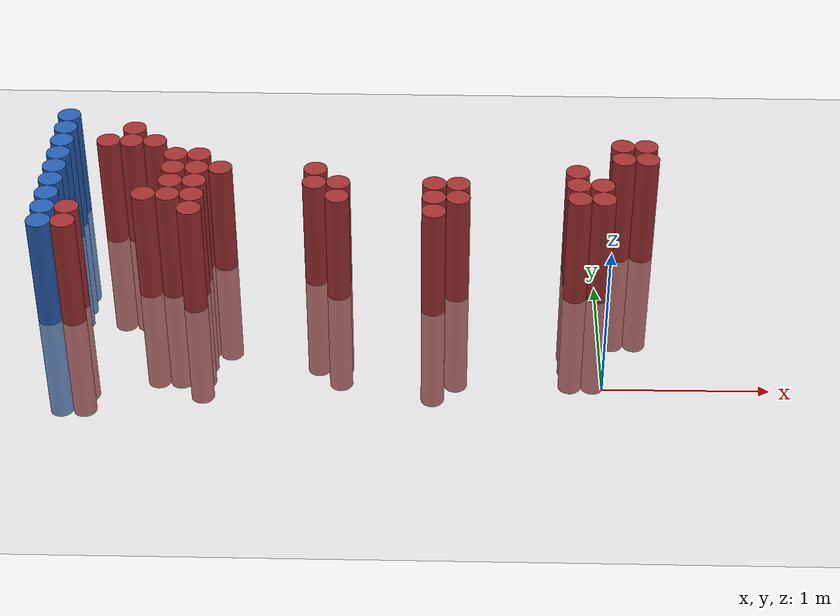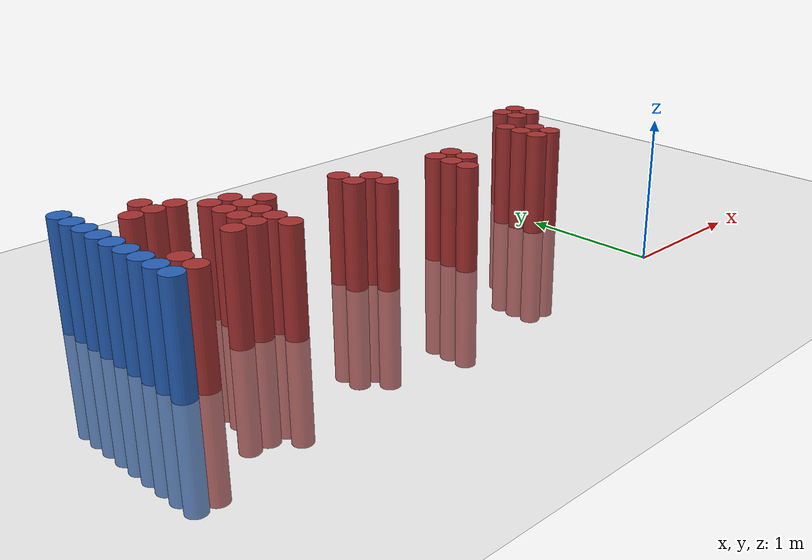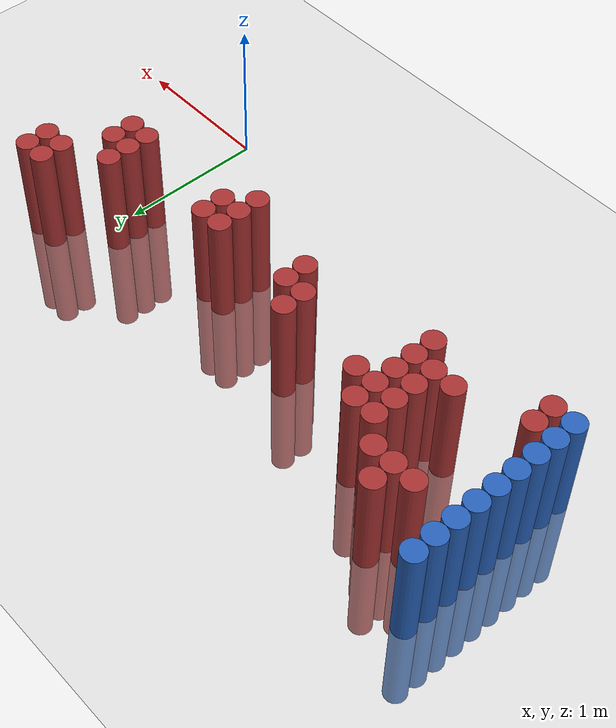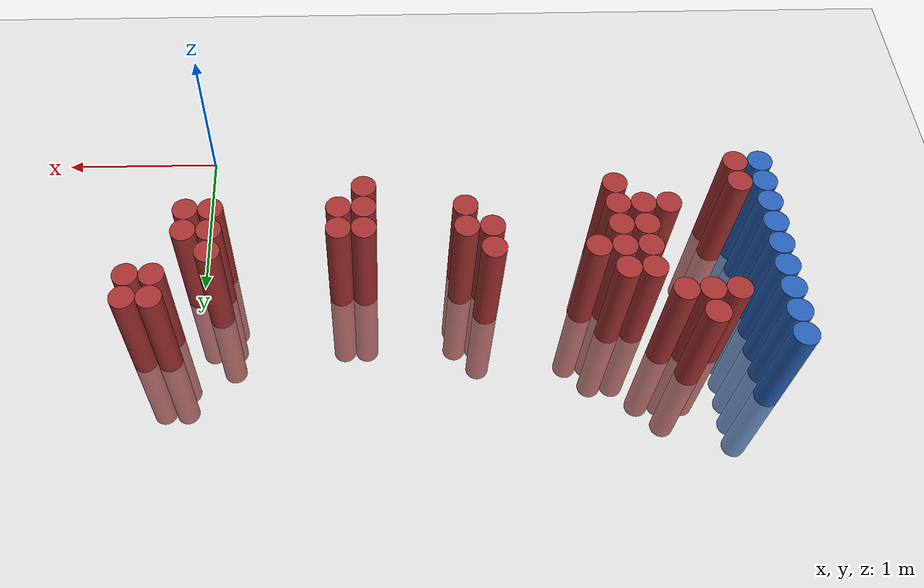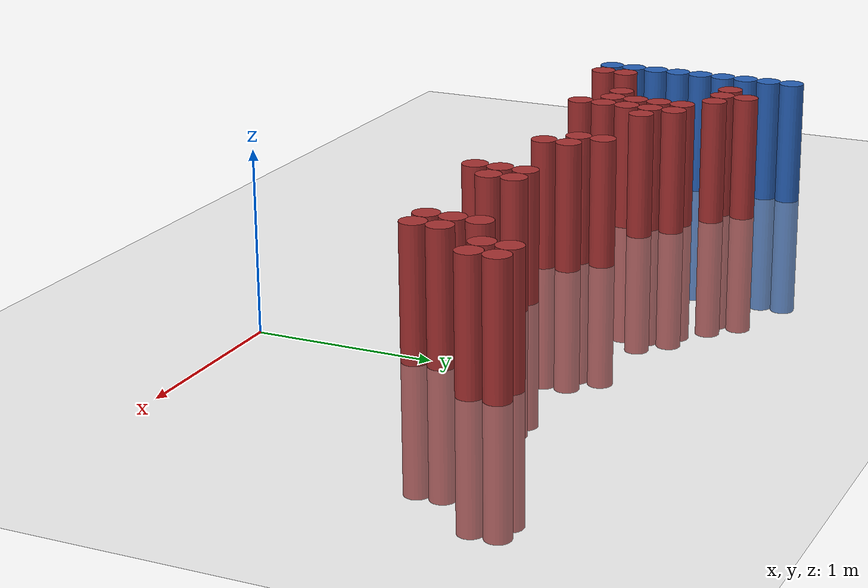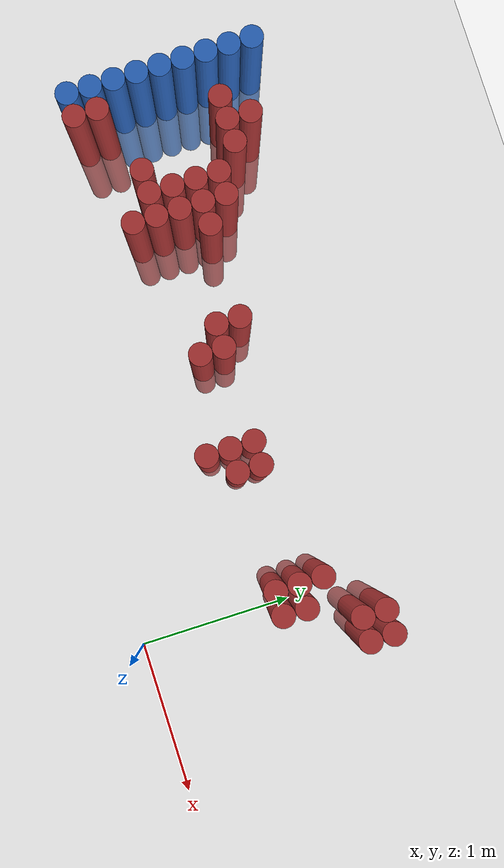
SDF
<sdf version="1.6">
 <world name="default">
  <model name="ground_plane">
   <static>1</static>
   <link name="link">
    <collision name="collision">
     <geometry><plane><normal>0 0 1</normal><size>100 100</size></plane></geometry>
     <surface><friction><ode><mu>100</mu><mu2>50</mu2></ode></friction></surface>
    </collision>
    <visual name="visual">
     <cast_shadows>0</cast_shadows>
     <geometry><plane><normal>0 0 1</normal><size>100 100</size></plane></geometry>
     <material>
      <script><uri>file://media/materials/scripts/gazebo.material</uri><name>Gazebo/Grey</name></script>
     </material>
    </visual>
   </link>
  </model>
  <model name="unit_cylinder_123">
   <static>1</static>
   <pose>-3.425000 0.625000 0.000000 0.000000 0.000000 0.000000</pose>
   <link name="link">
    <inertial>
     <mass>1</mass>
     <inertia><ixx>0.145833</ixx><ixy>0</ixy><ixz>0</ixz><iyy>0.145833</iyy><iyz>0</iyz><izz>0.125</izz></inertia>
    </inertial>
    <collision name="collision">
     <geometry><cylinder><radius>0.075000</radius><length>1.5</length></cylinder></geometry>
    </collision>
    <visual name="visual">
     <geometry><cylinder><radius>0.075000</radius><length>1.5</length></cylinder></geometry>
     <material>
      <ambient>0.152000 0.379000 0.720000 1</ambient>
      <diffuse>0.152000 0.379000 0.720000 1</diffuse>
     </material>
     <material>
      <script><name>Gazebo/Grey</name><uri>file://media/materials/scripts/gazebo.material</uri></script>
     </material>
    </visual>
   </link>
  </model>
  <model name="unit_cylinder_125">
   <static>1</static>
   <pose>-3.425000 0.775000 0.000000 0.000000 0.000000 0.000000</pose>
   <link name="link">
    <inertial>
     <mass>1</mass>
     <inertia><ixx>0.145833</ixx><ixy>0</ixy><ixz>0</ixz><iyy>0.145833</iyy><iyz>0</iyz><izz>0.125</izz></inertia>
    </inertial>
    <collision name="collision">
     <geometry><cylinder><radius>0.075000</radius><length>1.5</length></cylinder></geometry>
    </collision>
    <visual name="visual">
     <geometry><cylinder><radius>0.075000</radius><length>1.5</length></cylinder></geometry>
     <material>
      <ambient>0.152000 0.379000 0.720000 1</ambient>
      <diffuse>0.152000 0.379000 0.720000 1</diffuse>
     </material>
     <material>
      <script><name>Gazebo/Grey</name><uri>file://media/materials/scripts/gazebo.material</uri></script>
     </material>
    </visual>
   </link>
  </model>
  <model name="unit_cylinder_127">
   <static>1</static>
   <pose>-3.425000 0.925000 0.000000 0.000000 0.000000 0.000000</pose>
   <link name="link">
    <inertial>
     <mass>1</mass>
     <inertia><ixx>0.145833</ixx><ixy>0</ixy><ixz>0</ixz><iyy>0.145833</iyy><iyz>0</iyz><izz>0.125</izz></inertia>
    </inertial>
    <collision name="collision">
     <geometry><cylinder><radius>0.075000</radius><length>1.5</length></cylinder></geometry>
    </collision>
    <visual name="visual">
     <geometry><cylinder><radius>0.075000</radius><length>1.5</length></cylinder></geometry>
     <material>
      <ambient>0.152000 0.379000 0.720000 1</ambient>
      <diffuse>0.152000 0.379000 0.720000 1</diffuse>
     </material>
     <material>
      <script><name>Gazebo/Grey</name><uri>file://media/materials/scripts/gazebo.material</uri></script>
     </material>
    </visual>
   </link>
  </model>
  <model name="unit_cylinder_129">
   <static>1</static>
   <pose>-3.425000 1.075000 0.000000 0.000000 0.000000 0.000000</pose>
   <link name="link">
    <inertial>
     <mass>1</mass>
     <inertia><ixx>0.145833</ixx><ixy>0</ixy><ixz>0</ixz><iyy>0.145833</iyy><iyz>0</iyz><izz>0.125</izz></inertia>
    </inertial>
    <collision name="collision">
     <geometry><cylinder><radius>0.075000</radius><length>1.5</length></cylinder></geometry>
    </collision>
    <visual name="visual">
     <geometry><cylinder><radius>0.075000</radius><length>1.5</length></cylinder></geometry>
     <material>
      <ambient>0.152000 0.379000 0.720000 1</ambient>
      <diffuse>0.152000 0.379000 0.720000 1</diffuse>
     </material>
     <material>
      <script><name>Gazebo/Grey</name><uri>file://media/materials/scripts/gazebo.material</uri></script>
     </material>
    </visual>
   </link>
  </model>
  <model name="unit_cylinder_131">
   <static>1</static>
   <pose>-3.425000 1.225000 0.000000 0.000000 0.000000 0.000000</pose>
   <link name="link">
    <inertial>
     <mass>1</mass>
     <inertia><ixx>0.145833</ixx><ixy>0</ixy><ixz>0</ixz><iyy>0.145833</iyy><iyz>0</iyz><izz>0.125</izz></inertia>
    </inertial>
    <collision name="collision">
     <geometry><cylinder><radius>0.075000</radius><length>1.5</length></cylinder></geometry>
    </collision>
    <visual name="visual">
     <geometry><cylinder><radius>0.075000</radius><length>1.5</length></cylinder></geometry>
     <material>
      <ambient>0.152000 0.379000 0.720000 1</ambient>
      <diffuse>0.152000 0.379000 0.720000 1</diffuse>
     </material>
     <material>
      <script><name>Gazebo/Grey</name><uri>file://media/materials/scripts/gazebo.material</uri></script>
     </material>
    </visual>
   </link>
  </model>
  <model name="unit_cylinder_133">
   <static>1</static>
   <pose>-3.425000 1.375000 0.000000 0.000000 0.000000 0.000000</pose>
   <link name="link">
    <inertial>
     <mass>1</mass>
     <inertia><ixx>0.145833</ixx><ixy>0</ixy><ixz>0</ixz><iyy>0.145833</iyy><iyz>0</iyz><izz>0.125</izz></inertia>
    </inertial>
    <collision name="collision">
     <geometry><cylinder><radius>0.075000</radius><length>1.5</length></cylinder></geometry>
    </collision>
    <visual name="visual">
     <geometry><cylinder><radius>0.075000</radius><length>1.5</length></cylinder></geometry>
     <material>
      <ambient>0.152000 0.379000 0.720000 1</ambient>
      <diffuse>0.152000 0.379000 0.720000 1</diffuse>
     </material>
     <material>
      <script><name>Gazebo/Grey</name><uri>file://media/materials/scripts/gazebo.material</uri></script>
     </material>
    </visual>
   </link>
  </model>
  <model name="unit_cylinder_135">
   <static>1</static>
   <pose>-3.425000 1.525000 0.000000 0.000000 0.000000 0.000000</pose>
   <link name="link">
    <inertial>
     <mass>1</mass>
     <inertia><ixx>0.145833</ixx><ixy>0</ixy><ixz>0</ixz><iyy>0.145833</iyy><iyz>0</iyz><izz>0.125</izz></inertia>
    </inertial>
    <collision name="collision">
     <geometry><cylinder><radius>0.075000</radius><length>1.5</length></cylinder></geometry>
    </collision>
    <visual name="visual">
     <geometry><cylinder><radius>0.075000</radius><length>1.5</length></cylinder></geometry>
     <material>
      <ambient>0.152000 0.379000 0.720000 1</ambient>
      <diffuse>0.152000 0.379000 0.720000 1</diffuse>
     </material>
     <material>
      <script><name>Gazebo/Grey</name><uri>file://media/materials/scripts/gazebo.material</uri></script>
     </material>
    </visual>
   </link>
  </model>
  <model name="unit_cylinder_137">
   <static>1</static>
   <pose>-3.425000 1.675000 0.000000 0.000000 0.000000 0.000000</pose>
   <link name="link">
    <inertial>
     <mass>1</mass>
     <inertia><ixx>0.145833</ixx><ixy>0</ixy><ixz>0</ixz><iyy>0.145833</iyy><iyz>0</iyz><izz>0.125</izz></inertia>
    </inertial>
    <collision name="collision">
     <geometry><cylinder><radius>0.075000</radius><length>1.5</length></cylinder></geometry>
    </collision>
    <visual name="visual">
     <geometry><cylinder><radius>0.075000</radius><length>1.5</length></cylinder></geometry>
     <material>
      <ambient>0.152000 0.379000 0.720000 1</ambient>
      <diffuse>0.152000 0.379000 0.720000 1</diffuse>
     </material>
     <material>
      <script><name>Gazebo/Grey</name><uri>file://media/materials/scripts/gazebo.material</uri></script>
     </material>
    </visual>
   </link>
  </model>
  <model name="unit_cylinder_139">
   <static>1</static>
   <pose>-3.425000 1.825000 0.000000 0.000000 0.000000 0.000000</pose>
   <link name="link">
    <inertial>
     <mass>1</mass>
     <inertia><ixx>0.145833</ixx><ixy>0</ixy><ixz>0</ixz><iyy>0.145833</iyy><iyz>0</iyz><izz>0.125</izz></inertia>
    </inertial>
    <collision name="collision">
     <geometry><cylinder><radius>0.075000</radius><length>1.5</length></cylinder></geometry>
    </collision>
    <visual name="visual">
     <geometry><cylinder><radius>0.075000</radius><length>1.5</length></cylinder></geometry>
     <material>
      <ambient>0.152000 0.379000 0.720000 1</ambient>
      <diffuse>0.152000 0.379000 0.720000 1</diffuse>
     </material>
     <material>
      <script><name>Gazebo/Grey</name><uri>file://media/materials/scripts/gazebo.material</uri></script>
     </material>
    </visual>
   </link>
  </model>
  <model name="unit_cylinder_225">
   <static>1</static>
   <pose>-3.425000 0.625000 0.000000 0.000000 0.000000 0.000000</pose>
   <link name="link">
    <inertial>
     <mass>1</mass>
     <inertia><ixx>0.145833</ixx><ixy>0</ixy><ixz>0</ixz><iyy>0.145833</iyy><iyz>0</iyz><izz>0.125</izz></inertia>
    </inertial>
    <collision name="collision">
     <geometry><cylinder><radius>0.075000</radius><length>1.5</length></cylinder></geometry>
    </collision>
    <visual name="visual">
     <geometry><cylinder><radius>0.075000</radius><length>1.5</length></cylinder></geometry>
     <material>
      <ambient>0.152000 0.379000 0.720000 1</ambient>
      <diffuse>0.152000 0.379000 0.720000 1</diffuse>
     </material>
     <material>
      <script><name>Gazebo/Grey</name><uri>file://media/materials/scripts/gazebo.material</uri></script>
     </material>
    </visual>
   </link>
  </model>
  <model name="unit_cylinder_226">
   <static>1</static>
   <pose>-3.425000 0.775000 0.000000 0.000000 0.000000 0.000000</pose>
   <link name="link">
    <inertial>
     <mass>1</mass>
     <inertia><ixx>0.145833</ixx><ixy>0</ixy><ixz>0</ixz><iyy>0.145833</iyy><iyz>0</iyz><izz>0.125</izz></inertia>
    </inertial>
    <collision name="collision">
     <geometry><cylinder><radius>0.075000</radius><length>1.5</length></cylinder></geometry>
    </collision>
    <visual name="visual">
     <geometry><cylinder><radius>0.075000</radius><length>1.5</length></cylinder></geometry>
     <material>
      <ambient>0.152000 0.379000 0.720000 1</ambient>
      <diffuse>0.152000 0.379000 0.720000 1</diffuse>
     </material>
     <material>
      <script><name>Gazebo/Grey</name><uri>file://media/materials/scripts/gazebo.material</uri></script>
     </material>
    </visual>
   </link>
  </model>
  <model name="unit_cylinder_227">
   <static>1</static>
   <pose>-3.425000 0.925000 0.000000 0.000000 0.000000 0.000000</pose>
   <link name="link">
    <inertial>
     <mass>1</mass>
     <inertia><ixx>0.145833</ixx><ixy>0</ixy><ixz>0</ixz><iyy>0.145833</iyy><iyz>0</iyz><izz>0.125</izz></inertia>
    </inertial>
    <collision name="collision">
     <geometry><cylinder><radius>0.075000</radius><length>1.5</length></cylinder></geometry>
    </collision>
    <visual name="visual">
     <geometry><cylinder><radius>0.075000</radius><length>1.5</length></cylinder></geometry>
     <material>
      <ambient>0.152000 0.379000 0.720000 1</ambient>
      <diffuse>0.152000 0.379000 0.720000 1</diffuse>
     </material>
     <material>
      <script><name>Gazebo/Grey</name><uri>file://media/materials/scripts/gazebo.material</uri></script>
     </material>
    </visual>
   </link>
  </model>
  <model name="unit_cylinder_228">
   <static>1</static>
   <pose>-3.425000 1.075000 0.000000 0.000000 0.000000 0.000000</pose>
   <link name="link">
    <inertial>
     <mass>1</mass>
     <inertia><ixx>0.145833</ixx><ixy>0</ixy><ixz>0</ixz><iyy>0.145833</iyy><iyz>0</iyz><izz>0.125</izz></inertia>
    </inertial>
    <collision name="collision">
     <geometry><cylinder><radius>0.075000</radius><length>1.5</length></cylinder></geometry>
    </collision>
    <visual name="visual">
     <geometry><cylinder><radius>0.075000</radius><length>1.5</length></cylinder></geometry>
     <material>
      <ambient>0.152000 0.379000 0.720000 1</ambient>
      <diffuse>0.152000 0.379000 0.720000 1</diffuse>
     </material>
     <material>
      <script><name>Gazebo/Grey</name><uri>file://media/materials/scripts/gazebo.material</uri></script>
     </material>
    </visual>
   </link>
  </model>
  <model name="unit_cylinder_229">
   <static>1</static>
   <pose>-3.425000 1.225000 0.000000 0.000000 0.000000 0.000000</pose>
   <link name="link">
    <inertial>
     <mass>1</mass>
     <inertia><ixx>0.145833</ixx><ixy>0</ixy><ixz>0</ixz><iyy>0.145833</iyy><iyz>0</iyz><izz>0.125</izz></inertia>
    </inertial>
    <collision name="collision">
     <geometry><cylinder><radius>0.075000</radius><length>1.5</length></cylinder></geometry>
    </collision>
    <visual name="visual">
     <geometry><cylinder><radius>0.075000</radius><length>1.5</length></cylinder></geometry>
     <material>
      <ambient>0.152000 0.379000 0.720000 1</ambient>
      <diffuse>0.152000 0.379000 0.720000 1</diffuse>
     </material>
     <material>
      <script><name>Gazebo/Grey</name><uri>file://media/materials/scripts/gazebo.material</uri></script>
     </material>
    </visual>
   </link>
  </model>
  <model name="unit_cylinder_230">
   <static>1</static>
   <pose>-3.425000 1.375000 0.000000 0.000000 0.000000 0.000000</pose>
   <link name="link">
    <inertial>
     <mass>1</mass>
     <inertia><ixx>0.145833</ixx><ixy>0</ixy><ixz>0</ixz><iyy>0.145833</iyy><iyz>0</iyz><izz>0.125</izz></inertia>
    </inertial>
    <collision name="collision">
     <geometry><cylinder><radius>0.075000</radius><length>1.5</length></cylinder></geometry>
    </collision>
    <visual name="visual">
     <geometry><cylinder><radius>0.075000</radius><length>1.5</length></cylinder></geometry>
     <material>
      <ambient>0.152000 0.379000 0.720000 1</ambient>
      <diffuse>0.152000 0.379000 0.720000 1</diffuse>
     </material>
     <material>
      <script><name>Gazebo/Grey</name><uri>file://media/materials/scripts/gazebo.material</uri></script>
     </material>
    </visual>
   </link>
  </model>
  <model name="unit_cylinder_231">
   <static>1</static>
   <pose>-3.425000 1.525000 0.000000 0.000000 0.000000 0.000000</pose>
   <link name="link">
    <inertial>
     <mass>1</mass>
     <inertia><ixx>0.145833</ixx><ixy>0</ixy><ixz>0</ixz><iyy>0.145833</iyy><iyz>0</iyz><izz>0.125</izz></inertia>
    </inertial>
    <collision name="collision">
     <geometry><cylinder><radius>0.075000</radius><length>1.5</length></cylinder></geometry>
    </collision>
    <visual name="visual">
     <geometry><cylinder><radius>0.075000</radius><length>1.5</length></cylinder></geometry>
     <material>
      <ambient>0.152000 0.379000 0.720000 1</ambient>
      <diffuse>0.152000 0.379000 0.720000 1</diffuse>
     </material>
     <material>
      <script><name>Gazebo/Grey</name><uri>file://media/materials/scripts/gazebo.material</uri></script>
     </material>
    </visual>
   </link>
  </model>
  <model name="unit_cylinder_232">
   <static>1</static>
   <pose>-3.425000 1.675000 0.000000 0.000000 0.000000 0.000000</pose>
   <link name="link">
    <inertial>
     <mass>1</mass>
     <inertia><ixx>0.145833</ixx><ixy>0</ixy><ixz>0</ixz><iyy>0.145833</iyy><iyz>0</iyz><izz>0.125</izz></inertia>
    </inertial>
    <collision name="collision">
     <geometry><cylinder><radius>0.075000</radius><length>1.5</length></cylinder></geometry>
    </collision>
    <visual name="visual">
     <geometry><cylinder><radius>0.075000</radius><length>1.5</length></cylinder></geometry>
     <material>
      <ambient>0.152000 0.379000 0.720000 1</ambient>
      <diffuse>0.152000 0.379000 0.720000 1</diffuse>
     </material>
     <material>
      <script><name>Gazebo/Grey</name><uri>file://media/materials/scripts/gazebo.material</uri></script>
     </material>
    </visual>
   </link>
  </model>
  <model name="unit_cylinder_233">
   <static>1</static>
   <pose>-3.425000 1.825000 0.000000 0.000000 0.000000 0.000000</pose>
   <link name="link">
    <inertial>
     <mass>1</mass>
     <inertia><ixx>0.145833</ixx><ixy>0</ixy><ixz>0</ixz><iyy>0.145833</iyy><iyz>0</iyz><izz>0.125</izz></inertia>
    </inertial>
    <collision name="collision">
     <geometry><cylinder><radius>0.075000</radius><length>1.5</length></cylinder></geometry>
    </collision>
    <visual name="visual">
     <geometry><cylinder><radius>0.075000</radius><length>1.5</length></cylinder></geometry>
     <material>
      <ambient>0.152000 0.379000 0.720000 1</ambient>
      <diffuse>0.152000 0.379000 0.720000 1</diffuse>
     </material>
     <material>
      <script><name>Gazebo/Grey</name><uri>file://media/materials/scripts/gazebo.material</uri></script>
     </material>
    </visual>
   </link>
  </model>
  <model name="unit_cylinder_264">
   <static>1</static>
   <pose>-3.275000 0.625000 0.000000 0.000000 0.000000 0.000000</pose>
   <link name="link">
    <inertial>
     <mass>1</mass>
     <inertia><ixx>0.145833</ixx><ixy>0</ixy><ixz>0</ixz><iyy>0.145833</iyy><iyz>0</iyz><izz>0.125</izz></inertia>
    </inertial>
    <collision name="collision">
     <geometry><cylinder><radius>0.075000</radius><length>1.5</length></cylinder></geometry>
    </collision>
    <visual name="visual">
     <geometry><cylinder><radius>0.075000</radius><length>1.5</length></cylinder></geometry>
     <material>
      <ambient>0.648000 0.192000 0.192000 1</ambient>
      <diffuse>0.648000 0.192000 0.192000 1</diffuse>
     </material>
     <material>
      <script><name>Gazebo/Grey</name><uri>file://media/materials/scripts/gazebo.material</uri></script>
     </material>
    </visual>
   </link>
  </model>
  <model name="unit_cylinder_265">
   <static>1</static>
   <pose>-3.275000 0.775000 0.000000 0.000000 0.000000 0.000000</pose>
   <link name="link">
    <inertial>
     <mass>1</mass>
     <inertia><ixx>0.145833</ixx><ixy>0</ixy><ixz>0</ixz><iyy>0.145833</iyy><iyz>0</iyz><izz>0.125</izz></inertia>
    </inertial>
    <collision name="collision">
     <geometry><cylinder><radius>0.075000</radius><length>1.5</length></cylinder></geometry>
    </collision>
    <visual name="visual">
     <geometry><cylinder><radius>0.075000</radius><length>1.5</length></cylinder></geometry>
     <material>
      <ambient>0.648000 0.192000 0.192000 1</ambient>
      <diffuse>0.648000 0.192000 0.192000 1</diffuse>
     </material>
     <material>
      <script><name>Gazebo/Grey</name><uri>file://media/materials/scripts/gazebo.material</uri></script>
     </material>
    </visual>
   </link>
  </model>
  <model name="unit_cylinder_278">
   <static>1</static>
   <pose>-3.125000 1.525000 0.000000 0.000000 0.000000 0.000000</pose>
   <link name="link">
    <inertial>
     <mass>1</mass>
     <inertia><ixx>0.145833</ixx><ixy>0</ixy><ixz>0</ixz><iyy>0.145833</iyy><iyz>0</iyz><izz>0.125</izz></inertia>
    </inertial>
    <collision name="collision">
     <geometry><cylinder><radius>0.075000</radius><length>1.5</length></cylinder></geometry>
    </collision>
    <visual name="visual">
     <geometry><cylinder><radius>0.075000</radius><length>1.5</length></cylinder></geometry>
     <material>
      <ambient>0.648000 0.192000 0.192000 1</ambient>
      <diffuse>0.648000 0.192000 0.192000 1</diffuse>
     </material>
     <material>
      <script><name>Gazebo/Grey</name><uri>file://media/materials/scripts/gazebo.material</uri></script>
     </material>
    </visual>
   </link>
  </model>
  <model name="unit_cylinder_285">
   <static>1</static>
   <pose>-2.975000 1.525000 0.000000 0.000000 0.000000 0.000000</pose>
   <link name="link">
    <inertial>
     <mass>1</mass>
     <inertia><ixx>0.145833</ixx><ixy>0</ixy><ixz>0</ixz><iyy>0.145833</iyy><iyz>0</iyz><izz>0.125</izz></inertia>
    </inertial>
    <collision name="collision">
     <geometry><cylinder><radius>0.075000</radius><length>1.5</length></cylinder></geometry>
    </collision>
    <visual name="visual">
     <geometry><cylinder><radius>0.075000</radius><length>1.5</length></cylinder></geometry>
     <material>
      <ambient>0.648000 0.192000 0.192000 1</ambient>
      <diffuse>0.648000 0.192000 0.192000 1</diffuse>
     </material>
     <material>
      <script><name>Gazebo/Grey</name><uri>file://media/materials/scripts/gazebo.material</uri></script>
     </material>
    </visual>
   </link>
  </model>
  <model name="unit_cylinder_286">
   <static>1</static>
   <pose>-2.975000 1.675000 0.000000 0.000000 0.000000 0.000000</pose>
   <link name="link">
    <inertial>
     <mass>1</mass>
     <inertia><ixx>0.145833</ixx><ixy>0</ixy><ixz>0</ixz><iyy>0.145833</iyy><iyz>0</iyz><izz>0.125</izz></inertia>
    </inertial>
    <collision name="collision">
     <geometry><cylinder><radius>0.075000</radius><length>1.5</length></cylinder></geometry>
    </collision>
    <visual name="visual">
     <geometry><cylinder><radius>0.075000</radius><length>1.5</length></cylinder></geometry>
     <material>
      <ambient>0.648000 0.192000 0.192000 1</ambient>
      <diffuse>0.648000 0.192000 0.192000 1</diffuse>
     </material>
     <material>
      <script><name>Gazebo/Grey</name><uri>file://media/materials/scripts/gazebo.material</uri></script>
     </material>
    </visual>
   </link>
  </model>
  <model name="unit_cylinder_291">
   <static>1</static>
   <pose>-2.825000 0.925000 0.000000 0.000000 0.000000 0.000000</pose>
   <link name="link">
    <inertial>
     <mass>1</mass>
     <inertia><ixx>0.145833</ixx><ixy>0</ixy><ixz>0</ixz><iyy>0.145833</iyy><iyz>0</iyz><izz>0.125</izz></inertia>
    </inertial>
    <collision name="collision">
     <geometry><cylinder><radius>0.075000</radius><length>1.5</length></cylinder></geometry>
    </collision>
    <visual name="visual">
     <geometry><cylinder><radius>0.075000</radius><length>1.5</length></cylinder></geometry>
     <material>
      <ambient>0.648000 0.192000 0.192000 1</ambient>
      <diffuse>0.648000 0.192000 0.192000 1</diffuse>
     </material>
     <material>
      <script><name>Gazebo/Grey</name><uri>file://media/materials/scripts/gazebo.material</uri></script>
     </material>
    </visual>
   </link>
  </model>
  <model name="unit_cylinder_292">
   <static>1</static>
   <pose>-2.825000 1.525000 0.000000 0.000000 0.000000 0.000000</pose>
   <link name="link">
    <inertial>
     <mass>1</mass>
     <inertia><ixx>0.145833</ixx><ixy>0</ixy><ixz>0</ixz><iyy>0.145833</iyy><iyz>0</iyz><izz>0.125</izz></inertia>
    </inertial>
    <collision name="collision">
     <geometry><cylinder><radius>0.075000</radius><length>1.5</length></cylinder></geometry>
    </collision>
    <visual name="visual">
     <geometry><cylinder><radius>0.075000</radius><length>1.5</length></cylinder></geometry>
     <material>
      <ambient>0.648000 0.192000 0.192000 1</ambient>
      <diffuse>0.648000 0.192000 0.192000 1</diffuse>
     </material>
     <material>
      <script><name>Gazebo/Grey</name><uri>file://media/materials/scripts/gazebo.material</uri></script>
     </material>
    </visual>
   </link>
  </model>
  <model name="unit_cylinder_295">
   <static>1</static>
   <pose>-2.675000 0.925000 0.000000 0.000000 0.000000 0.000000</pose>
   <link name="link">
    <inertial>
     <mass>1</mass>
     <inertia><ixx>0.145833</ixx><ixy>0</ixy><ixz>0</ixz><iyy>0.145833</iyy><iyz>0</iyz><izz>0.125</izz></inertia>
    </inertial>
    <collision name="collision">
     <geometry><cylinder><radius>0.075000</radius><length>1.5</length></cylinder></geometry>
    </collision>
    <visual name="visual">
     <geometry><cylinder><radius>0.075000</radius><length>1.5</length></cylinder></geometry>
     <material>
      <ambient>0.648000 0.192000 0.192000 1</ambient>
      <diffuse>0.648000 0.192000 0.192000 1</diffuse>
     </material>
     <material>
      <script><name>Gazebo/Grey</name><uri>file://media/materials/scripts/gazebo.material</uri></script>
     </material>
    </visual>
   </link>
  </model>
  <model name="unit_cylinder_296">
   <static>1</static>
   <pose>-2.675000 1.075000 0.000000 0.000000 0.000000 0.000000</pose>
   <link name="link">
    <inertial>
     <mass>1</mass>
     <inertia><ixx>0.145833</ixx><ixy>0</ixy><ixz>0</ixz><iyy>0.145833</iyy><iyz>0</iyz><izz>0.125</izz></inertia>
    </inertial>
    <collision name="collision">
     <geometry><cylinder><radius>0.075000</radius><length>1.5</length></cylinder></geometry>
    </collision>
    <visual name="visual">
     <geometry><cylinder><radius>0.075000</radius><length>1.5</length></cylinder></geometry>
     <material>
      <ambient>0.648000 0.192000 0.192000 1</ambient>
      <diffuse>0.648000 0.192000 0.192000 1</diffuse>
     </material>
     <material>
      <script><name>Gazebo/Grey</name><uri>file://media/materials/scripts/gazebo.material</uri></script>
     </material>
    </visual>
   </link>
  </model>
  <model name="unit_cylinder_297">
   <static>1</static>
   <pose>-2.675000 1.225000 0.000000 0.000000 0.000000 0.000000</pose>
   <link name="link">
    <inertial>
     <mass>1</mass>
     <inertia><ixx>0.145833</ixx><ixy>0</ixy><ixz>0</ixz><iyy>0.145833</iyy><iyz>0</iyz><izz>0.125</izz></inertia>
    </inertial>
    <collision name="collision">
     <geometry><cylinder><radius>0.075000</radius><length>1.5</length></cylinder></geometry>
    </collision>
    <visual name="visual">
     <geometry><cylinder><radius>0.075000</radius><length>1.5</length></cylinder></geometry>
     <material>
      <ambient>0.648000 0.192000 0.192000 1</ambient>
      <diffuse>0.648000 0.192000 0.192000 1</diffuse>
     </material>
     <material>
      <script><name>Gazebo/Grey</name><uri>file://media/materials/scripts/gazebo.material</uri></script>
     </material>
    </visual>
   </link>
  </model>
  <model name="unit_cylinder_298">
   <static>1</static>
   <pose>-2.675000 1.375000 0.000000 0.000000 0.000000 0.000000</pose>
   <link name="link">
    <inertial>
     <mass>1</mass>
     <inertia><ixx>0.145833</ixx><ixy>0</ixy><ixz>0</ixz><iyy>0.145833</iyy><iyz>0</iyz><izz>0.125</izz></inertia>
    </inertial>
    <collision name="collision">
     <geometry><cylinder><radius>0.075000</radius><length>1.5</length></cylinder></geometry>
    </collision>
    <visual name="visual">
     <geometry><cylinder><radius>0.075000</radius><length>1.5</length></cylinder></geometry>
     <material>
      <ambient>0.648000 0.192000 0.192000 1</ambient>
      <diffuse>0.648000 0.192000 0.192000 1</diffuse>
     </material>
     <material>
      <script><name>Gazebo/Grey</name><uri>file://media/materials/scripts/gazebo.material</uri></script>
     </material>
    </visual>
   </link>
  </model>
  <model name="unit_cylinder_300">
   <static>1</static>
   <pose>-2.525000 0.775000 0.000000 0.000000 0.000000 0.000000</pose>
   <link name="link">
    <inertial>
     <mass>1</mass>
     <inertia><ixx>0.145833</ixx><ixy>0</ixy><ixz>0</ixz><iyy>0.145833</iyy><iyz>0</iyz><izz>0.125</izz></inertia>
    </inertial>
    <collision name="collision">
     <geometry><cylinder><radius>0.075000</radius><length>1.5</length></cylinder></geometry>
    </collision>
    <visual name="visual">
     <geometry><cylinder><radius>0.075000</radius><length>1.5</length></cylinder></geometry>
     <material>
      <ambient>0.648000 0.192000 0.192000 1</ambient>
      <diffuse>0.648000 0.192000 0.192000 1</diffuse>
     </material>
     <material>
      <script><name>Gazebo/Grey</name><uri>file://media/materials/scripts/gazebo.material</uri></script>
     </material>
    </visual>
   </link>
  </model>
  <model name="unit_cylinder_301">
   <static>1</static>
   <pose>-2.525000 0.925000 0.000000 0.000000 0.000000 0.000000</pose>
   <link name="link">
    <inertial>
     <mass>1</mass>
     <inertia><ixx>0.145833</ixx><ixy>0</ixy><ixz>0</ixz><iyy>0.145833</iyy><iyz>0</iyz><izz>0.125</izz></inertia>
    </inertial>
    <collision name="collision">
     <geometry><cylinder><radius>0.075000</radius><length>1.5</length></cylinder></geometry>
    </collision>
    <visual name="visual">
     <geometry><cylinder><radius>0.075000</radius><length>1.5</length></cylinder></geometry>
     <material>
      <ambient>0.648000 0.192000 0.192000 1</ambient>
      <diffuse>0.648000 0.192000 0.192000 1</diffuse>
     </material>
     <material>
      <script><name>Gazebo/Grey</name><uri>file://media/materials/scripts/gazebo.material</uri></script>
     </material>
    </visual>
   </link>
  </model>
  <model name="unit_cylinder_302">
   <static>1</static>
   <pose>-2.525000 1.075000 0.000000 0.000000 0.000000 0.000000</pose>
   <link name="link">
    <inertial>
     <mass>1</mass>
     <inertia><ixx>0.145833</ixx><ixy>0</ixy><ixz>0</ixz><iyy>0.145833</iyy><iyz>0</iyz><izz>0.125</izz></inertia>
    </inertial>
    <collision name="collision">
     <geometry><cylinder><radius>0.075000</radius><length>1.5</length></cylinder></geometry>
    </collision>
    <visual name="visual">
     <geometry><cylinder><radius>0.075000</radius><length>1.5</length></cylinder></geometry>
     <material>
      <ambient>0.648000 0.192000 0.192000 1</ambient>
      <diffuse>0.648000 0.192000 0.192000 1</diffuse>
     </material>
     <material>
      <script><name>Gazebo/Grey</name><uri>file://media/materials/scripts/gazebo.material</uri></script>
     </material>
    </visual>
   </link>
  </model>
  <model name="unit_cylinder_303">
   <static>1</static>
   <pose>-2.525000 1.225000 0.000000 0.000000 0.000000 0.000000</pose>
   <link name="link">
    <inertial>
     <mass>1</mass>
     <inertia><ixx>0.145833</ixx><ixy>0</ixy><ixz>0</ixz><iyy>0.145833</iyy><iyz>0</iyz><izz>0.125</izz></inertia>
    </inertial>
    <collision name="collision">
     <geometry><cylinder><radius>0.075000</radius><length>1.5</length></cylinder></geometry>
    </collision>
    <visual name="visual">
     <geometry><cylinder><radius>0.075000</radius><length>1.5</length></cylinder></geometry>
     <material>
      <ambient>0.648000 0.192000 0.192000 1</ambient>
      <diffuse>0.648000 0.192000 0.192000 1</diffuse>
     </material>
     <material>
      <script><name>Gazebo/Grey</name><uri>file://media/materials/scripts/gazebo.material</uri></script>
     </material>
    </visual>
   </link>
  </model>
  <model name="unit_cylinder_304">
   <static>1</static>
   <pose>-2.525000 1.375000 0.000000 0.000000 0.000000 0.000000</pose>
   <link name="link">
    <inertial>
     <mass>1</mass>
     <inertia><ixx>0.145833</ixx><ixy>0</ixy><ixz>0</ixz><iyy>0.145833</iyy><iyz>0</iyz><izz>0.125</izz></inertia>
    </inertial>
    <collision name="collision">
     <geometry><cylinder><radius>0.075000</radius><length>1.5</length></cylinder></geometry>
    </collision>
    <visual name="visual">
     <geometry><cylinder><radius>0.075000</radius><length>1.5</length></cylinder></geometry>
     <material>
      <ambient>0.648000 0.192000 0.192000 1</ambient>
      <diffuse>0.648000 0.192000 0.192000 1</diffuse>
     </material>
     <material>
      <script><name>Gazebo/Grey</name><uri>file://media/materials/scripts/gazebo.material</uri></script>
     </material>
    </visual>
   </link>
  </model>
  <model name="unit_cylinder_307">
   <static>1</static>
   <pose>-2.375000 1.225000 0.000000 0.000000 0.000000 0.000000</pose>
   <link name="link">
    <inertial>
     <mass>1</mass>
     <inertia><ixx>0.145833</ixx><ixy>0</ixy><ixz>0</ixz><iyy>0.145833</iyy><iyz>0</iyz><izz>0.125</izz></inertia>
    </inertial>
    <collision name="collision">
     <geometry><cylinder><radius>0.075000</radius><length>1.5</length></cylinder></geometry>
    </collision>
    <visual name="visual">
     <geometry><cylinder><radius>0.075000</radius><length>1.5</length></cylinder></geometry>
     <material>
      <ambient>0.648000 0.192000 0.192000 1</ambient>
      <diffuse>0.648000 0.192000 0.192000 1</diffuse>
     </material>
     <material>
      <script><name>Gazebo/Grey</name><uri>file://media/materials/scripts/gazebo.material</uri></script>
     </material>
    </visual>
   </link>
  </model>
  <model name="unit_cylinder_321">
   <static>1</static>
   <pose>-1.775000 1.075000 0.000000 0.000000 0.000000 0.000000</pose>
   <link name="link">
    <inertial>
     <mass>1</mass>
     <inertia><ixx>0.145833</ixx><ixy>0</ixy><ixz>0</ixz><iyy>0.145833</iyy><iyz>0</iyz><izz>0.125</izz></inertia>
    </inertial>
    <collision name="collision">
     <geometry><cylinder><radius>0.075000</radius><length>1.5</length></cylinder></geometry>
    </collision>
    <visual name="visual">
     <geometry><cylinder><radius>0.075000</radius><length>1.5</length></cylinder></geometry>
     <material>
      <ambient>0.648000 0.192000 0.192000 1</ambient>
      <diffuse>0.648000 0.192000 0.192000 1</diffuse>
     </material>
     <material>
      <script><name>Gazebo/Grey</name><uri>file://media/materials/scripts/gazebo.material</uri></script>
     </material>
    </visual>
   </link>
  </model>
  <model name="unit_cylinder_322">
   <static>1</static>
   <pose>-1.775000 1.225000 0.000000 0.000000 0.000000 0.000000</pose>
   <link name="link">
    <inertial>
     <mass>1</mass>
     <inertia><ixx>0.145833</ixx><ixy>0</ixy><ixz>0</ixz><iyy>0.145833</iyy><iyz>0</iyz><izz>0.125</izz></inertia>
    </inertial>
    <collision name="collision">
     <geometry><cylinder><radius>0.075000</radius><length>1.5</length></cylinder></geometry>
    </collision>
    <visual name="visual">
     <geometry><cylinder><radius>0.075000</radius><length>1.5</length></cylinder></geometry>
     <material>
      <ambient>0.648000 0.192000 0.192000 1</ambient>
      <diffuse>0.648000 0.192000 0.192000 1</diffuse>
     </material>
     <material>
      <script><name>Gazebo/Grey</name><uri>file://media/materials/scripts/gazebo.material</uri></script>
     </material>
    </visual>
   </link>
  </model>
  <model name="unit_cylinder_326">
   <static>1</static>
   <pose>-1.625000 0.925000 0.000000 0.000000 0.000000 0.000000</pose>
   <link name="link">
    <inertial>
     <mass>1</mass>
     <inertia><ixx>0.145833</ixx><ixy>0</ixy><ixz>0</ixz><iyy>0.145833</iyy><iyz>0</iyz><izz>0.125</izz></inertia>
    </inertial>
    <collision name="collision">
     <geometry><cylinder><radius>0.075000</radius><length>1.5</length></cylinder></geometry>
    </collision>
    <visual name="visual">
     <geometry><cylinder><radius>0.075000</radius><length>1.5</length></cylinder></geometry>
     <material>
      <ambient>0.648000 0.192000 0.192000 1</ambient>
      <diffuse>0.648000 0.192000 0.192000 1</diffuse>
     </material>
     <material>
      <script><name>Gazebo/Grey</name><uri>file://media/materials/scripts/gazebo.material</uri></script>
     </material>
    </visual>
   </link>
  </model>
  <model name="unit_cylinder_327">
   <static>1</static>
   <pose>-1.625000 1.075000 0.000000 0.000000 0.000000 0.000000</pose>
   <link name="link">
    <inertial>
     <mass>1</mass>
     <inertia><ixx>0.145833</ixx><ixy>0</ixy><ixz>0</ixz><iyy>0.145833</iyy><iyz>0</iyz><izz>0.125</izz></inertia>
    </inertial>
    <collision name="collision">
     <geometry><cylinder><radius>0.075000</radius><length>1.5</length></cylinder></geometry>
    </collision>
    <visual name="visual">
     <geometry><cylinder><radius>0.075000</radius><length>1.5</length></cylinder></geometry>
     <material>
      <ambient>0.648000 0.192000 0.192000 1</ambient>
      <diffuse>0.648000 0.192000 0.192000 1</diffuse>
     </material>
     <material>
      <script><name>Gazebo/Grey</name><uri>file://media/materials/scripts/gazebo.material</uri></script>
     </material>
    </visual>
   </link>
  </model>
  <model name="unit_cylinder_349">
   <static>1</static>
   <pose>-1.025000 0.775000 0.000000 0.000000 0.000000 0.000000</pose>
   <link name="link">
    <inertial>
     <mass>1</mass>
     <inertia><ixx>0.145833</ixx><ixy>0</ixy><ixz>0</ixz><iyy>0.145833</iyy><iyz>0</iyz><izz>0.125</izz></inertia>
    </inertial>
    <collision name="collision">
     <geometry><cylinder><radius>0.075000</radius><length>1.5</length></cylinder></geometry>
    </collision>
    <visual name="visual">
     <geometry><cylinder><radius>0.075000</radius><length>1.5</length></cylinder></geometry>
     <material>
      <ambient>0.648000 0.192000 0.192000 1</ambient>
      <diffuse>0.648000 0.192000 0.192000 1</diffuse>
     </material>
     <material>
      <script><name>Gazebo/Grey</name><uri>file://media/materials/scripts/gazebo.material</uri></script>
     </material>
    </visual>
   </link>
  </model>
  <model name="unit_cylinder_350">
   <static>1</static>
   <pose>-1.025000 0.925000 0.000000 0.000000 0.000000 0.000000</pose>
   <link name="link">
    <inertial>
     <mass>1</mass>
     <inertia><ixx>0.145833</ixx><ixy>0</ixy><ixz>0</ixz><iyy>0.145833</iyy><iyz>0</iyz><izz>0.125</izz></inertia>
    </inertial>
    <collision name="collision">
     <geometry><cylinder><radius>0.075000</radius><length>1.5</length></cylinder></geometry>
    </collision>
    <visual name="visual">
     <geometry><cylinder><radius>0.075000</radius><length>1.5</length></cylinder></geometry>
     <material>
      <ambient>0.648000 0.192000 0.192000 1</ambient>
      <diffuse>0.648000 0.192000 0.192000 1</diffuse>
     </material>
     <material>
      <script><name>Gazebo/Grey</name><uri>file://media/materials/scripts/gazebo.material</uri></script>
     </material>
    </visual>
   </link>
  </model>
  <model name="unit_cylinder_351">
   <static>1</static>
   <pose>-1.025000 1.075000 0.000000 0.000000 0.000000 0.000000</pose>
   <link name="link">
    <inertial>
     <mass>1</mass>
     <inertia><ixx>0.145833</ixx><ixy>0</ixy><ixz>0</ixz><iyy>0.145833</iyy><iyz>0</iyz><izz>0.125</izz></inertia>
    </inertial>
    <collision name="collision">
     <geometry><cylinder><radius>0.075000</radius><length>1.5</length></cylinder></geometry>
    </collision>
    <visual name="visual">
     <geometry><cylinder><radius>0.075000</radius><length>1.5</length></cylinder></geometry>
     <material>
      <ambient>0.648000 0.192000 0.192000 1</ambient>
      <diffuse>0.648000 0.192000 0.192000 1</diffuse>
     </material>
     <material>
      <script><name>Gazebo/Grey</name><uri>file://media/materials/scripts/gazebo.material</uri></script>
     </material>
    </visual>
   </link>
  </model>
  <model name="unit_cylinder_357">
   <static>1</static>
   <pose>-0.875000 0.925000 0.000000 0.000000 0.000000 0.000000</pose>
   <link name="link">
    <inertial>
     <mass>1</mass>
     <inertia><ixx>0.145833</ixx><ixy>0</ixy><ixz>0</ixz><iyy>0.145833</iyy><iyz>0</iyz><izz>0.125</izz></inertia>
    </inertial>
    <collision name="collision">
     <geometry><cylinder><radius>0.075000</radius><length>1.5</length></cylinder></geometry>
    </collision>
    <visual name="visual">
     <geometry><cylinder><radius>0.075000</radius><length>1.5</length></cylinder></geometry>
     <material>
      <ambient>0.648000 0.192000 0.192000 1</ambient>
      <diffuse>0.648000 0.192000 0.192000 1</diffuse>
     </material>
     <material>
      <script><name>Gazebo/Grey</name><uri>file://media/materials/scripts/gazebo.material</uri></script>
     </material>
    </visual>
   </link>
  </model>
  <model name="unit_cylinder_358">
   <static>1</static>
   <pose>-0.875000 1.075000 0.000000 0.000000 0.000000 0.000000</pose>
   <link name="link">
    <inertial>
     <mass>1</mass>
     <inertia><ixx>0.145833</ixx><ixy>0</ixy><ixz>0</ixz><iyy>0.145833</iyy><iyz>0</iyz><izz>0.125</izz></inertia>
    </inertial>
    <collision name="collision">
     <geometry><cylinder><radius>0.075000</radius><length>1.5</length></cylinder></geometry>
    </collision>
    <visual name="visual">
     <geometry><cylinder><radius>0.075000</radius><length>1.5</length></cylinder></geometry>
     <material>
      <ambient>0.648000 0.192000 0.192000 1</ambient>
      <diffuse>0.648000 0.192000 0.192000 1</diffuse>
     </material>
     <material>
      <script><name>Gazebo/Grey</name><uri>file://media/materials/scripts/gazebo.material</uri></script>
     </material>
    </visual>
   </link>
  </model>
  <model name="unit_cylinder_373">
   <static>1</static>
   <pose>-0.125000 0.925000 0.000000 0.000000 0.000000 0.000000</pose>
   <link name="link">
    <inertial>
     <mass>1</mass>
     <inertia><ixx>0.145833</ixx><ixy>0</ixy><ixz>0</ixz><iyy>0.145833</iyy><iyz>0</iyz><izz>0.125</izz></inertia>
    </inertial>
    <collision name="collision">
     <geometry><cylinder><radius>0.075000</radius><length>1.5</length></cylinder></geometry>
    </collision>
    <visual name="visual">
     <geometry><cylinder><radius>0.075000</radius><length>1.5</length></cylinder></geometry>
     <material>
      <ambient>0.648000 0.192000 0.192000 1</ambient>
      <diffuse>0.648000 0.192000 0.192000 1</diffuse>
     </material>
     <material>
      <script><name>Gazebo/Grey</name><uri>file://media/materials/scripts/gazebo.material</uri></script>
     </material>
    </visual>
   </link>
  </model>
  <model name="unit_cylinder_374">
   <static>1</static>
   <pose>-0.125000 1.075000 0.000000 0.000000 0.000000 0.000000</pose>
   <link name="link">
    <inertial>
     <mass>1</mass>
     <inertia><ixx>0.145833</ixx><ixy>0</ixy><ixz>0</ixz><iyy>0.145833</iyy><iyz>0</iyz><izz>0.125</izz></inertia>
    </inertial>
    <collision name="collision">
     <geometry><cylinder><radius>0.075000</radius><length>1.5</length></cylinder></geometry>
    </collision>
    <visual name="visual">
     <geometry><cylinder><radius>0.075000</radius><length>1.5</length></cylinder></geometry>
     <material>
      <ambient>0.648000 0.192000 0.192000 1</ambient>
      <diffuse>0.648000 0.192000 0.192000 1</diffuse>
     </material>
     <material>
      <script><name>Gazebo/Grey</name><uri>file://media/materials/scripts/gazebo.material</uri></script>
     </material>
    </visual>
   </link>
  </model>
  <model name="unit_cylinder_375">
   <static>1</static>
   <pose>-0.125000 1.225000 0.000000 0.000000 0.000000 0.000000</pose>
   <link name="link">
    <inertial>
     <mass>1</mass>
     <inertia><ixx>0.145833</ixx><ixy>0</ixy><ixz>0</ixz><iyy>0.145833</iyy><iyz>0</iyz><izz>0.125</izz></inertia>
    </inertial>
    <collision name="collision">
     <geometry><cylinder><radius>0.075000</radius><length>1.5</length></cylinder></geometry>
    </collision>
    <visual name="visual">
     <geometry><cylinder><radius>0.075000</radius><length>1.5</length></cylinder></geometry>
     <material>
      <ambient>0.648000 0.192000 0.192000 1</ambient>
      <diffuse>0.648000 0.192000 0.192000 1</diffuse>
     </material>
     <material>
      <script><name>Gazebo/Grey</name><uri>file://media/materials/scripts/gazebo.material</uri></script>
     </material>
    </visual>
   </link>
  </model>
  <model name="unit_cylinder_377">
   <static>1</static>
   <pose>0.025000 0.925000 0.000000 0.000000 0.000000 0.000000</pose>
   <link name="link">
    <inertial>
     <mass>1</mass>
     <inertia><ixx>0.145833</ixx><ixy>0</ixy><ixz>0</ixz><iyy>0.145833</iyy><iyz>0</iyz><izz>0.125</izz></inertia>
    </inertial>
    <collision name="collision">
     <geometry><cylinder><radius>0.075000</radius><length>1.5</length></cylinder></geometry>
    </collision>
    <visual name="visual">
     <geometry><cylinder><radius>0.075000</radius><length>1.5</length></cylinder></geometry>
     <material>
      <ambient>0.648000 0.192000 0.192000 1</ambient>
      <diffuse>0.648000 0.192000 0.192000 1</diffuse>
     </material>
     <material>
      <script><name>Gazebo/Grey</name><uri>file://media/materials/scripts/gazebo.material</uri></script>
     </material>
    </visual>
   </link>
  </model>
  <model name="unit_cylinder_378">
   <static>1</static>
   <pose>0.025000 1.075000 0.000000 0.000000 0.000000 0.000000</pose>
   <link name="link">
    <inertial>
     <mass>1</mass>
     <inertia><ixx>0.145833</ixx><ixy>0</ixy><ixz>0</ixz><iyy>0.145833</iyy><iyz>0</iyz><izz>0.125</izz></inertia>
    </inertial>
    <collision name="collision">
     <geometry><cylinder><radius>0.075000</radius><length>1.5</length></cylinder></geometry>
    </collision>
    <visual name="visual">
     <geometry><cylinder><radius>0.075000</radius><length>1.5</length></cylinder></geometry>
     <material>
      <ambient>0.648000 0.192000 0.192000 1</ambient>
      <diffuse>0.648000 0.192000 0.192000 1</diffuse>
     </material>
     <material>
      <script><name>Gazebo/Grey</name><uri>file://media/materials/scripts/gazebo.material</uri></script>
     </material>
    </visual>
   </link>
  </model>
  <model name="unit_cylinder_379">
   <static>1</static>
   <pose>0.175000 1.375000 0.000000 0.000000 0.000000 0.000000</pose>
   <link name="link">
    <inertial>
     <mass>1</mass>
     <inertia><ixx>0.145833</ixx><ixy>0</ixy><ixz>0</ixz><iyy>0.145833</iyy><iyz>0</iyz><izz>0.125</izz></inertia>
    </inertial>
    <collision name="collision">
     <geometry><cylinder><radius>0.075000</radius><length>1.5</length></cylinder></geometry>
    </collision>
    <visual name="visual">
     <geometry><cylinder><radius>0.075000</radius><length>1.5</length></cylinder></geometry>
     <material>
      <ambient>0.648000 0.192000 0.192000 1</ambient>
      <diffuse>0.648000 0.192000 0.192000 1</diffuse>
     </material>
     <material>
      <script><name>Gazebo/Grey</name><uri>file://media/materials/scripts/gazebo.material</uri></script>
     </material>
    </visual>
   </link>
  </model>
  <model name="unit_cylinder_380">
   <static>1</static>
   <pose>0.175000 1.525000 0.000000 0.000000 0.000000 0.000000</pose>
   <link name="link">
    <inertial>
     <mass>1</mass>
     <inertia><ixx>0.145833</ixx><ixy>0</ixy><ixz>0</ixz><iyy>0.145833</iyy><iyz>0</iyz><izz>0.125</izz></inertia>
    </inertial>
    <collision name="collision">
     <geometry><cylinder><radius>0.075000</radius><length>1.5</length></cylinder></geometry>
    </collision>
    <visual name="visual">
     <geometry><cylinder><radius>0.075000</radius><length>1.5</length></cylinder></geometry>
     <material>
      <ambient>0.648000 0.192000 0.192000 1</ambient>
      <diffuse>0.648000 0.192000 0.192000 1</diffuse>
     </material>
     <material>
      <script><name>Gazebo/Grey</name><uri>file://media/materials/scripts/gazebo.material</uri></script>
     </material>
    </visual>
   </link>
  </model>
  <model name="unit_cylinder_382">
   <static>1</static>
   <pose>0.325000 1.375000 0.000000 0.000000 0.000000 0.000000</pose>
   <link name="link">
    <inertial>
     <mass>1</mass>
     <inertia><ixx>0.145833</ixx><ixy>0</ixy><ixz>0</ixz><iyy>0.145833</iyy><iyz>0</iyz><izz>0.125</izz></inertia>
    </inertial>
    <collision name="collision">
     <geometry><cylinder><radius>0.075000</radius><length>1.5</length></cylinder></geometry>
    </collision>
    <visual name="visual">
     <geometry><cylinder><radius>0.075000</radius><length>1.5</length></cylinder></geometry>
     <material>
      <ambient>0.648000 0.192000 0.192000 1</ambient>
      <diffuse>0.648000 0.192000 0.192000 1</diffuse>
     </material>
     <material>
      <script><name>Gazebo/Grey</name><uri>file://media/materials/scripts/gazebo.material</uri></script>
     </material>
    </visual>
   </link>
  </model>
  <model name="unit_cylinder_383">
   <static>1</static>
   <pose>0.325000 1.525000 0.000000 0.000000 0.000000 0.000000</pose>
   <link name="link">
    <inertial>
     <mass>1</mass>
     <inertia><ixx>0.145833</ixx><ixy>0</ixy><ixz>0</ixz><iyy>0.145833</iyy><iyz>0</iyz><izz>0.125</izz></inertia>
    </inertial>
    <collision name="collision">
     <geometry><cylinder><radius>0.075000</radius><length>1.5</length></cylinder></geometry>
    </collision>
    <visual name="visual">
     <geometry><cylinder><radius>0.075000</radius><length>1.5</length></cylinder></geometry>
     <material>
      <ambient>0.648000 0.192000 0.192000 1</ambient>
      <diffuse>0.648000 0.192000 0.192000 1</diffuse>
     </material>
     <material>
      <script><name>Gazebo/Grey</name><uri>file://media/materials/scripts/gazebo.material</uri></script>
     </material>
    </visual>
   </link>
  </model>
 </world>
</sdf>
